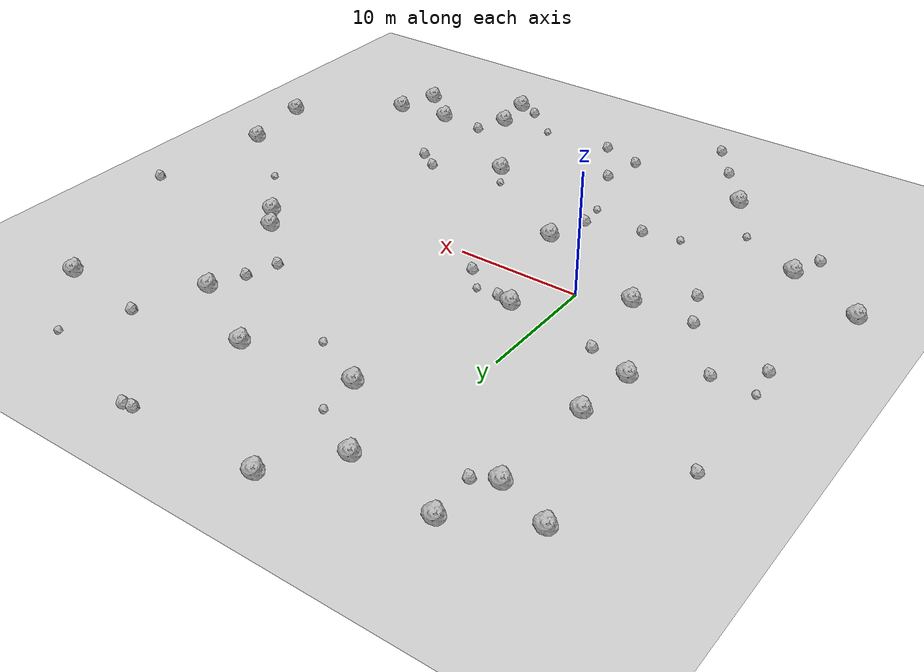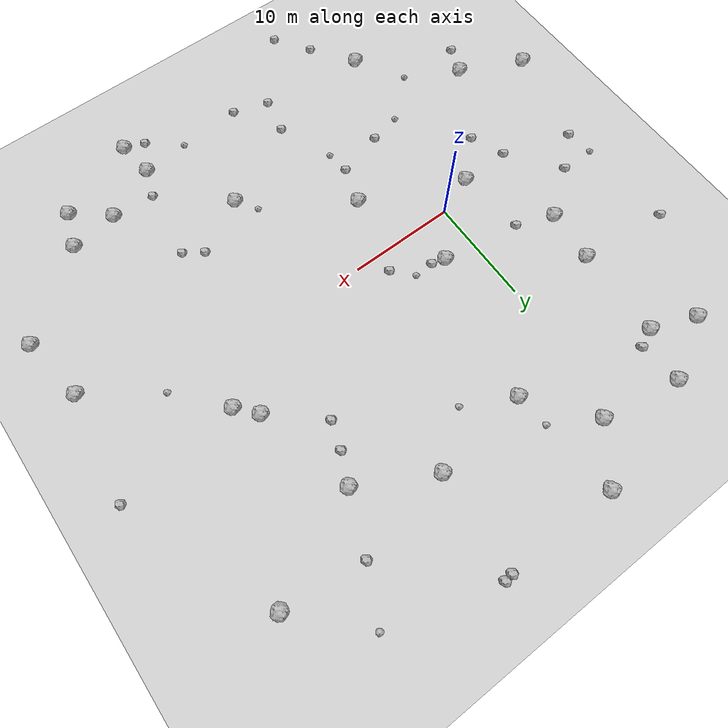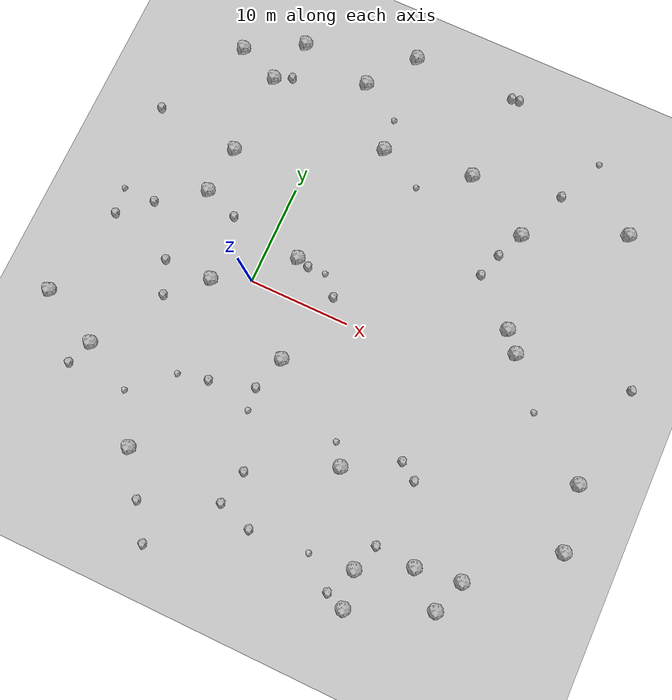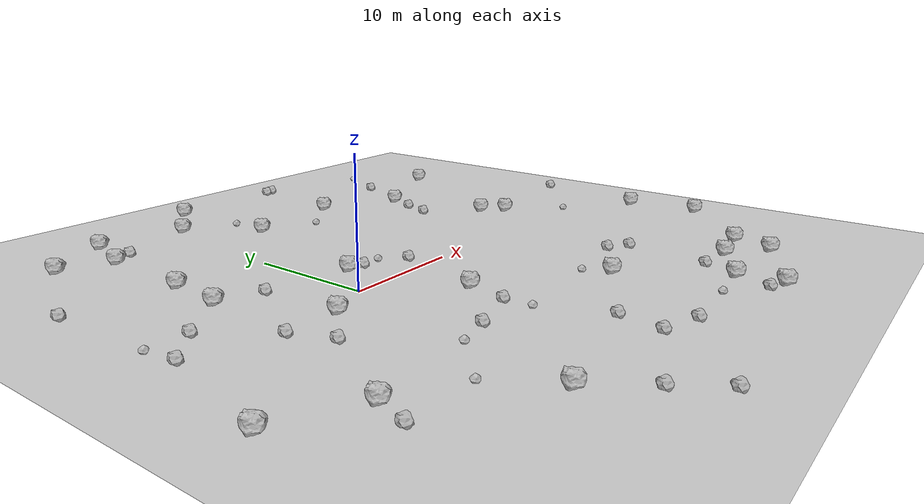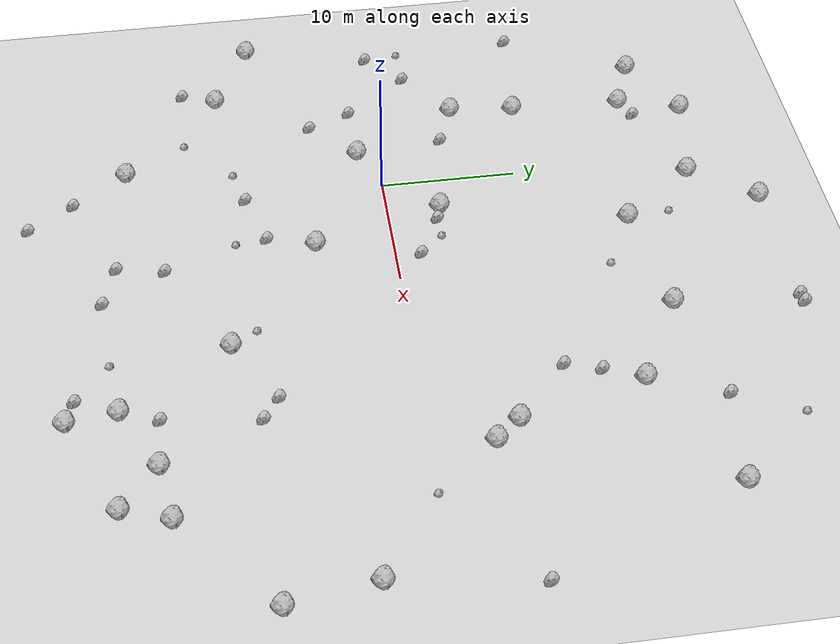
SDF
<sdf version="1.6">
 <world name="default">
  <include><uri>model://custom_ground</uri></include>
  <include><uri>model://sun</uri></include>
  <model name="rock1_0_0">
   <include><uri>model://rock1</uri><pose>31.323645814789323 19.270581954953627 0.5 0 0 0</pose></include>
  </model>
  <model name="rock1_0_1">
   <include><uri>model://rock1</uri><pose>-5.51867851214827 24.199380309814437 0.5 0 0 0</pose></include>
  </model>
  <model name="rock1_0_2">
   <include><uri>model://rock1</uri><pose>15.175881137884431 18.486177933784965 0.5 0 0 0</pose></include>
  </model>
  <model name="rock1_0_3">
   <include><uri>model://rock1</uri><pose>28.173100392939332 -20.36347644754197 0.5 0 0 0</pose></include>
  </model>
  <model name="rock1_0_4">
   <include><uri>model://rock1</uri><pose>3.121863633633474 3.861789008622715 0.5 0 0 0</pose></include>
  </model>
  <model name="rock1_0_5">
   <include><uri>model://rock1</uri><pose>20.025813773441968 -20.134038859779487 0.5 0 0 0</pose></include>
  </model>
  <model name="rock1_0_6">
   <include><uri>model://rock1</uri><pose>20.517614215999515 -23.662315917065147 0.5 0 0 0</pose></include>
  </model>
  <model name="rock1_0_7">
   <include><uri>model://rock1</uri><pose>36.7525975862281 -10.853067986479864 0.5 0 0 0</pose></include>
  </model>
  <model name="rock1_0_8">
   <include><uri>model://rock1</uri><pose>6.207886317455181 17.337839946644877 0.5 0 0 0</pose></include>
  </model>
  <model name="rock1_0_9">
   <include><uri>model://rock1</uri><pose>5.882170808075063 -5.615418716992654 0.5 0 0 0</pose></include>
  </model>
  <model name="rock1_0_10">
   <include><uri>model://rock1</uri><pose>-6.8765001596571445 19.56063270187701 0.5 0 0 0</pose></include>
  </model>
  <model name="rock1_0_11">
   <include><uri>model://rock1</uri><pose>-11.279204036337287 -11.75087149888611 0.5 0 0 0</pose></include>
  </model>
  <model name="rock1_0_12">
   <include><uri>model://rock1</uri><pose>-11.004823607466246 21.155434532249174 0.5 0 0 0</pose></include>
  </model>
  <model name="rock1_0_13">
   <include><uri>model://rock1</uri><pose>15.087824005755422 -12.379454636603313 0.5 0 0 0</pose></include>
  </model>
  <model name="rock1_0_14">
   <include><uri>model://rock1</uri><pose>29.330558159088866 -17.057179602932607 0.5 0 0 0</pose></include>
  </model>
  <model name="rock1_0_15">
   <include><uri>model://rock1</uri><pose>5.30753003283564 27.466645698513346 0.5 0 0 0</pose></include>
  </model>
  <model name="rock1_0_16">
   <include><uri>model://rock1</uri><pose>35.70783474936634 -4.6698337974231166 0.5 0 0 0</pose></include>
  </model>
  <model name="rock1_0_17">
   <include><uri>model://rock1</uri><pose>24.224916564953503 5.880709147007856 0.5 0 0 0</pose></include>
  </model>
  <model name="rock1_0_18">
   <include><uri>model://rock1</uri><pose>-7.2283357532736385 11.18781534681112 0.5 0 0 0</pose></include>
  </model>
  <model name="rock1_0_19">
   <include><uri>model://rock1</uri><pose>25.7898399033065 4.07598274443572 0.5 0 0 0</pose></include>
  </model>
  <model name="rock1_0_20">
   <include><uri>model://rock1</uri><pose>-3.5173196213842743 -18.947513594913982 0.5 0 0 0</pose></include>
  </model>
  <model name="rock1_0_21">
   <include><uri>model://rock1</uri><pose>-3.616944338547764 -1.471639838479323 0.5 0 0 0</pose></include>
  </model>
  <model name="rock1_0_22">
   <include><uri>model://rock1</uri><pose>1.7950533563550444 22.87518497777542 0.5 0 0 0</pose></include>
  </model>
  <model name="rock1_0_23">
   <include><uri>model://rock1</uri><pose>-7.721873380770772 6.338112571105356 0.5 0 0 0</pose></include>
  </model>
  <model name="rock1_0_24">
   <include><uri>model://rock1</uri><pose>-17.205234083135675 -8.898722600617987 0.5 0 0 0</pose></include>
  </model>
  <model name="rock1_0_25">
   <include><uri>model://rock1</uri><pose>24.921652989814746 -17.691668914133267 0.5 0 0 0</pose></include>
  </model>
  <model name="rock1_0_26">
   <include><uri>model://rock1</uri><pose>21.849157643020682 14.930381144137527 0.5 0 0 0</pose></include>
  </model>
  <model name="rock2_0_0">
   <include><uri>model://rock2</uri><pose>-0.7307273157601877 -22.915516298056616 0.3 0 0 0</pose></include>
  </model>
  <model name="rock2_0_1">
   <include><uri>model://rock2</uri><pose>0.424028639249574 -10.295067410250113 0.3 0 0 0</pose></include>
  </model>
  <model name="rock2_0_2">
   <include><uri>model://rock2</uri><pose>21.827459360780608 -10.720178018123669 0.3 0 0 0</pose></include>
  </model>
  <model name="rock2_0_3">
   <include><uri>model://rock2</uri><pose>20.63361047205484 12.239023379800692 0.3 0 0 0</pose></include>
  </model>
  <model name="rock2_0_4">
   <include><uri>model://rock2</uri><pose>-7.126189020396321 -4.753582078319926 0.3 0 0 0</pose></include>
  </model>
  <model name="rock2_0_5">
   <include><uri>model://rock2</uri><pose>-4.3265472841129835 5.041044674724866 0.3 0 0 0</pose></include>
  </model>
  <model name="rock2_0_6">
   <include><uri>model://rock2</uri><pose>7.131314616770926 -16.52749113577289 0.3 0 0 0</pose></include>
  </model>
  <model name="rock2_0_7">
   <include><uri>model://rock2</uri><pose>-14.999230052264902 0.543226788409978 0.3 0 0 0</pose></include>
  </model>
  <model name="rock2_0_8">
   <include><uri>model://rock2</uri><pose>-12.09512573367058 3.164204526269174 0.3 0 0 0</pose></include>
  </model>
  <model name="rock2_0_9">
   <include><uri>model://rock2</uri><pose>37.074717353086314 5.410952895898973 0.3 0 0 0</pose></include>
  </model>
  <model name="rock2_0_10">
   <include><uri>model://rock2</uri><pose>9.79796847268533 -20.998746368772245 0.3 0 0 0</pose></include>
  </model>
  <model name="rock2_0_11">
   <include><uri>model://rock2</uri><pose>1.5318023920667585 -26.18461459334759 0.3 0 0 0</pose></include>
  </model>
  <model name="rock2_0_12">
   <include><uri>model://rock2</uri><pose>-15.76342541456485 12.102808441204914 0.3 0 0 0</pose></include>
  </model>
  <model name="rock2_0_13">
   <include><uri>model://rock2</uri><pose>15.612397286862695 27.549698742222937 0.3 0 0 0</pose></include>
  </model>
  <model name="rock2_0_14">
   <include><uri>model://rock2</uri><pose>-12.338532149816704 -14.284027336692816 0.3 0 0 0</pose></include>
  </model>
  <model name="rock2_0_15">
   <include><uri>model://rock2</uri><pose>-5.250170940539963 20.379731272061065 0.3 0 0 0</pose></include>
  </model>
  <model name="rock2_0_16">
   <include><uri>model://rock2</uri><pose>4.787447187369295 -9.0629453077845 0.3 0 0 0</pose></include>
  </model>
  <model name="rock2_0_17">
   <include><uri>model://rock2</uri><pose>20.100494462749396 -9.551109147389155 0.3 0 0 0</pose></include>
  </model>
  <model name="rock2_0_18">
   <include><uri>model://rock2</uri><pose>4.3374109298442285 3.517286356166352 0.3 0 0 0</pose></include>
  </model>
  <model name="rock2_0_19">
   <include><uri>model://rock2</uri><pose>16.39168519735022 27.65048629688738 0.3 0 0 0</pose></include>
  </model>
  <model name="rock2_0_20">
   <include><uri>model://rock2</uri><pose>18.648964507505518 -23.012107528163995 0.3 0 0 0</pose></include>
  </model>
  <model name="rock2_0_21">
   <include><uri>model://rock2</uri><pose>7.81090608194782 1.8213301181370838 0.3 0 0 0</pose></include>
  </model>
  <model name="rock2_0_22">
   <include><uri>model://rock2</uri><pose>-8.463404297493016 -1.5622615191005629 0.3 0 0 0</pose></include>
  </model>
  <model name="rock2_0_23">
   <include><uri>model://rock2</uri><pose>19.82936894784855 9.747128215743523 0.3 0 0 0</pose></include>
  </model>
  <model name="rock2_0_24">
   <include><uri>model://rock2</uri><pose>23.947686294407937 20.20633049260335 0.3 0 0 0</pose></include>
  </model>
  <model name="rock2_0_25">
   <include><uri>model://rock2</uri><pose>6.456562637216628 -19.947571833452443 0.3 0 0 0</pose></include>
  </model>
  <model name="rock2_0_26">
   <include><uri>model://rock2</uri><pose>20.988222447892895 -17.45998482954664 0.3 0 0 0</pose></include>
  </model>
  <model name="rock3_0_0">
   <include><uri>model://rock3</uri><pose>10.637870214767968 15.094707127319062 0.2 0 0 0</pose></include>
  </model>
  <model name="rock3_0_1">
   <include><uri>model://rock3</uri><pose>5.841092741373593 20.53440016539794 0.2 0 0 0</pose></include>
  </model>
  <model name="rock3_0_2">
   <include><uri>model://rock3</uri><pose>-2.544820397323832 -11.004959543625588 0.2 0 0 0</pose></include>
  </model>
  <model name="rock3_0_3">
   <include><uri>model://rock3</uri><pose>26.124070395305417 24.787401066682 0.2 0 0 0</pose></include>
  </model>
  <model name="rock3_0_4">
   <include><uri>model://rock3</uri><pose>29.48677091957476 -0.32907853345127336 0.2 0 0 0</pose></include>
  </model>
  <model name="rock3_0_5">
   <include><uri>model://rock3</uri><pose>6.12883420780588 3.551681453912593 0.2 0 0 0</pose></include>
  </model>
  <model name="rock3_0_6">
   <include><uri>model://rock3</uri><pose>15.6565280522059 -20.650869245555157 0.2 0 0 0</pose></include>
  </model>
  <model name="rock3_0_7">
   <include><uri>model://rock3</uri><pose>-6.395547636673122 -14.466001680459424 0.2 0 0 0</pose></include>
  </model>
  <model name="rock3_0_8">
   <include><uri>model://rock3</uri><pose>5.012944849914376 -11.334281883173322 0.2 0 0 0</pose></include>
  </model>
  <model name="rock3_0_9">
   <include><uri>model://rock3</uri><pose>-15.37064736242507 3.1362396316396683 0.2 0 0 0</pose></include>
  </model>
  <model name="rock3_0_10">
   <include><uri>model://rock3</uri><pose>13.76583786686934 -10.508902331380504 0.2 0 0 0</pose></include>
  </model>
 </world>
</sdf>
